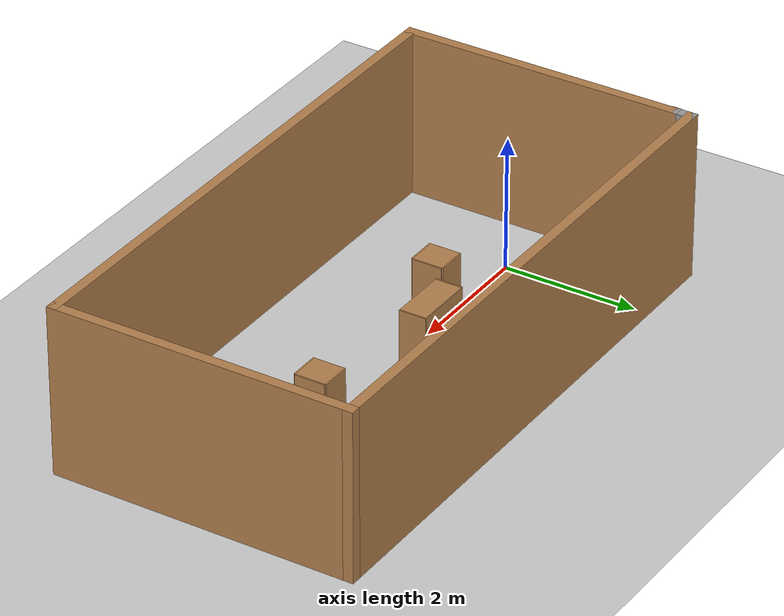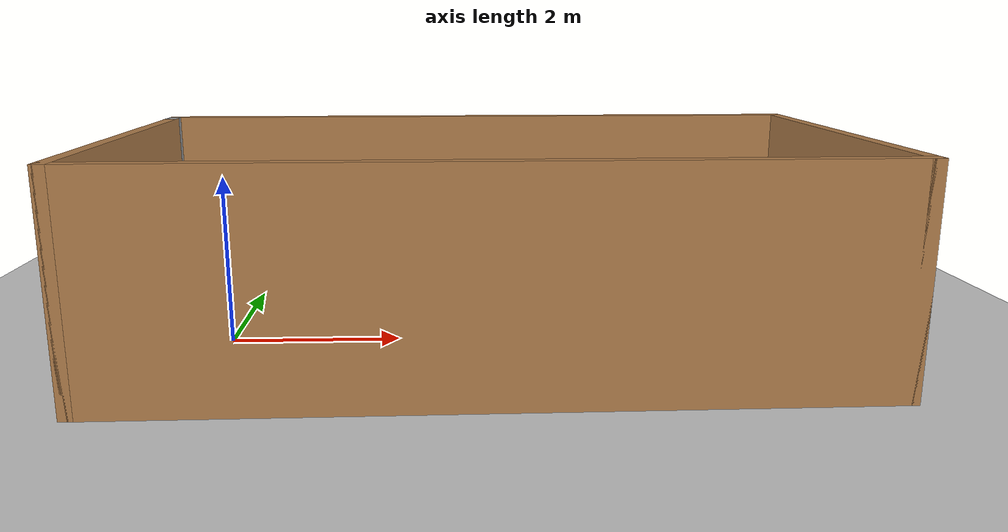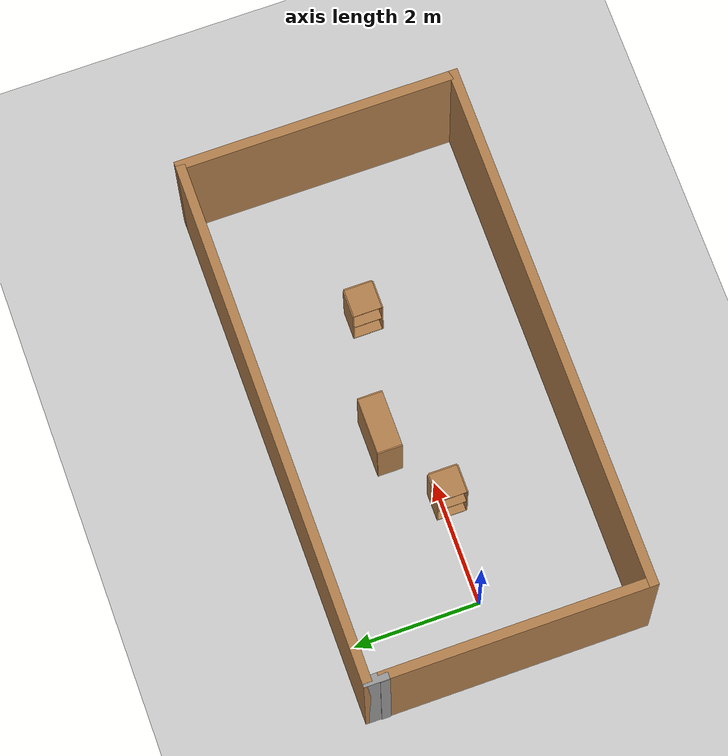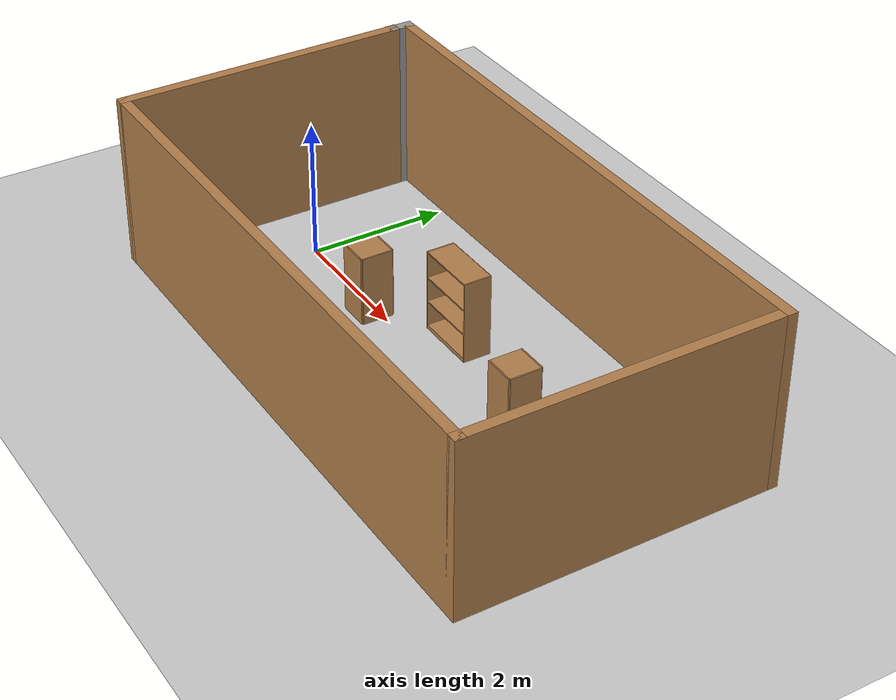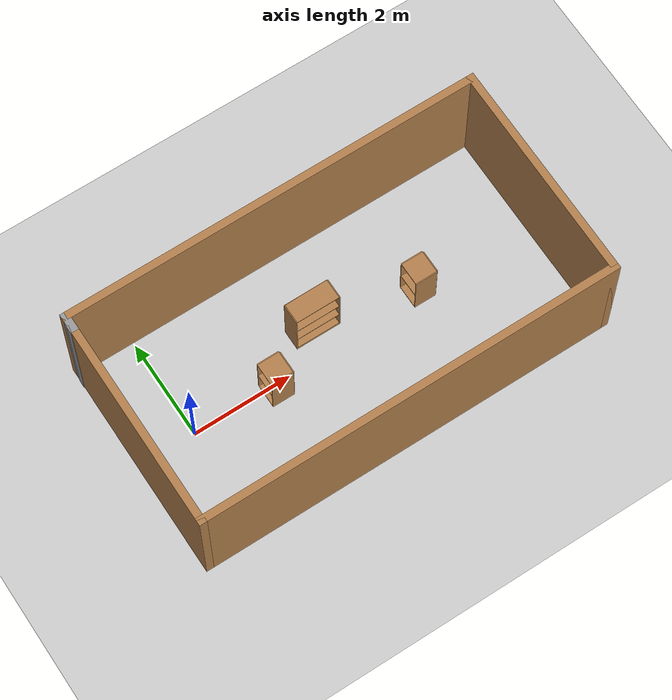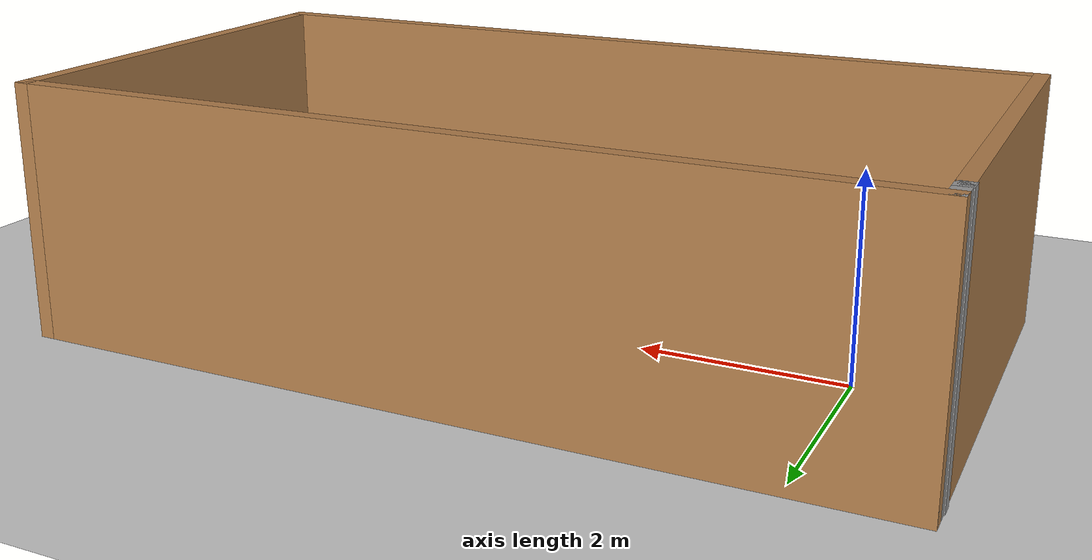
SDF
<sdf version="1.6">
 <world name="default">
  <light name="sun" type="directional">
   <pose>0 0 10 0 -0 0</pose>
   <diffuse>0.8 0.8 0.8 1</diffuse>
   <specular>0.2 0.2 0.2 1</specular>
   <attenuation>
    <range>1000</range>
    <constant>0.9</constant>
    <linear>0.01</linear>
    <quadratic>0.001</quadratic>
   </attenuation>
   <direction>-0.5 0.1 -0.9</direction>
  </light>
  <model name="ground_plane">
   <static>1</static>
   <link name="link">
    <collision name="collision">
     <geometry><plane><normal>0 0 1</normal><size>100 100</size></plane></geometry>
     <surface><friction><ode><mu>100</mu><mu2>50</mu2></ode></friction></surface>
    </collision>
    <visual name="visual">
     <cast_shadows>0</cast_shadows>
     <geometry><plane><normal>0 0 1</normal><size>100 100</size></plane></geometry>
     <material>
      <script><uri>file://media/materials/scripts/gazebo.material</uri><name>Gazebo/Grey</name></script>
     </material>
    </visual>
   </link>
  </model>
  <gravity>0 0 -9.8</gravity>
  <magnetic_field>6e-06 2.3e-05 -4.2e-05</magnetic_field>
  <atmosphere type="adiabatic"/>
  <physics name="default_physics" default="0" type="ode">
   <max_step_size>0.001</max_step_size>
   <real_time_factor>1</real_time_factor>
   <real_time_update_rate>1000</real_time_update_rate>
  </physics>
  <scene><ambient>0.4 0.4 0.4 1</ambient><background>0.7 0.7 0.7 1</background><shadows>1</shadows></scene>
  <audio><device>default</device></audio>
  <spherical_coordinates>
   <surface_model>EARTH_WGS84</surface_model>
   <latitude_deg>0</latitude_deg>
   <longitude_deg>0</longitude_deg>
   <elevation>0</elevation>
   <heading_deg>0</heading_deg>
  </spherical_coordinates>
  <model name="bigroom">
   <pose>3.07616 -0.0236 0 0 -0 0</pose>
   <link name="Wall_0">
    <collision name="Wall_0_Collision">
     <geometry><box><size>0.16 0.15 2.5</size></box></geometry>
     <pose>0 0 1.25 0 -0 0</pose>
    </collision>
    <visual name="Wall_0_Visual">
     <pose>0 0 1.25 0 -0 0</pose>
     <geometry><box><size>0.16 0.15 2.5</size></box></geometry>
     <material>
      <script><uri>file://media/materials/scripts/gazebo.material</uri><name>Gazebo/Grey</name></script>
      <ambient>1 1 1 1</ambient>
     </material>
     <meta><layer>0</layer></meta>
    </visual>
    <pose>-4.175 1.925 0 0 -0 0</pose>
   </link>
   <link name="Wall_1">
    <collision name="Wall_1_Collision">
     <geometry><box><size>4.25 0.15 2.5</size></box></geometry>
     <pose>0 0 1.25 0 -0 0</pose>
    </collision>
    <visual name="Wall_1_Visual">
     <pose>0 0 1.25 0 -0 0</pose>
     <geometry><box><size>4.25 0.15 2.5</size></box></geometry>
     <material>
      <script><uri>file://media/materials/scripts/gazebo.material</uri><name>Gazebo/Wood</name></script>
      <ambient>1 1 1 1</ambient>
     </material>
     <meta><layer>0</layer></meta>
    </visual>
    <pose>-4.17 -0.125 0 0 -0 -1.5708</pose>
   </link>
   <link name="Wall_2">
    <collision name="Wall_2_Collision">
     <geometry><box><size>8.5 0.15 2.5</size></box></geometry>
     <pose>0 0 1.25 0 -0 0</pose>
    </collision>
    <visual name="Wall_2_Visual">
     <pose>0 0 1.25 0 -0 0</pose>
     <geometry><box><size>8.5 0.15 2.5</size></box></geometry>
     <material>
      <script><uri>file://media/materials/scripts/gazebo.material</uri><name>Gazebo/Wood</name></script>
      <ambient>1 1 1 1</ambient>
     </material>
     <meta><layer>0</layer></meta>
    </visual>
    <pose>0.005 -2.175 0 0 -0 0</pose>
   </link>
   <link name="Wall_3">
    <collision name="Wall_3_Collision">
     <geometry><box><size>4.5 0.15 2.5</size></box></geometry>
     <pose>0 0 1.25 0 -0 0</pose>
    </collision>
    <visual name="Wall_3_Visual">
     <pose>0 0 1.25 0 -0 0</pose>
     <geometry><box><size>4.5 0.15 2.5</size></box></geometry>
     <material>
      <script><uri>file://media/materials/scripts/gazebo.material</uri><name>Gazebo/Wood</name></script>
      <ambient>1 1 1 1</ambient>
     </material>
     <meta><layer>0</layer></meta>
    </visual>
    <pose>4.18 0 0 0 -0 1.5708</pose>
   </link>
   <link name="Wall_4">
    <collision name="Wall_4_Collision">
     <geometry><box><size>8.5 0.15 2.5</size></box></geometry>
     <pose>0 0 1.25 0 -0 0</pose>
    </collision>
    <visual name="Wall_4_Visual">
     <pose>0 0 1.25 0 -0 0</pose>
     <geometry><box><size>8.5 0.15 2.5</size></box></geometry>
     <material>
      <script><uri>file://media/materials/scripts/gazebo.material</uri><name>Gazebo/Wood</name></script>
      <ambient>1 1 1 1</ambient>
     </material>
     <meta><layer>0</layer></meta>
    </visual>
    <pose>0.005 2.175 0 0 -0 3.14159</pose>
   </link>
   <link name="Wall_5">
    <collision name="Wall_5_Collision">
     <geometry><box><size>0.4 0.15 2.5</size></box></geometry>
     <pose>0 0 1.25 0 -0 0</pose>
    </collision>
    <visual name="Wall_5_Visual">
     <pose>0 0 1.25 0 -0 0</pose>
     <geometry><box><size>0.4 0.15 2.5</size></box></geometry>
     <material>
      <script><uri>file://media/materials/scripts/gazebo.material</uri><name>Gazebo/Grey</name></script>
      <ambient>1 1 1 1</ambient>
     </material>
     <meta><layer>0</layer></meta>
    </visual>
    <pose>-4.17 2.05 0 0 -0 -1.5708</pose>
   </link>
   <static>1</static>
  </model>
  <model name="bookshelf">
   <static>1</static>
   <link name="link">
    <inertial><mass>1</mass></inertial>
    <collision name="back">
     <pose>0 0.005 0.6 0 -0 0</pose>
     <geometry><box><size>0.9 0.01 1.2</size></box></geometry>
    </collision>
    <visual name="visual1">
     <pose>0 0.005 0.6 0 -0 0</pose>
     <geometry><box><size>0.9 0.01 1.2</size></box></geometry>
     <material>
      <script><uri>file://media/materials/scripts/gazebo.material</uri><name>Gazebo/Wood</name></script>
     </material>
    </visual>
    <collision name="left_side">
     <pose>0.45 -0.195 0.6 0 -0 0</pose>
     <geometry><box><size>0.02 0.4 1.2</size></box></geometry>
    </collision>
    <visual name="visual2">
     <pose>0.45 -0.195 0.6 0 -0 0</pose>
     <geometry><box><size>0.02 0.4 1.2</size></box></geometry>
     <material>
      <script><uri>file://media/materials/scripts/gazebo.material</uri><name>Gazebo/Wood</name></script>
     </material>
    </visual>
    <collision name="right_side">
     <pose>-0.45 -0.195 0.6 0 -0 0</pose>
     <geometry><box><size>0.02 0.4 1.2</size></box></geometry>
    </collision>
    <visual name="visual3">
     <pose>-0.45 -0.195 0.6 0 -0 0</pose>
     <geometry><box><size>0.02 0.4 1.2</size></box></geometry>
     <material>
      <script><uri>file://media/materials/scripts/gazebo.material</uri><name>Gazebo/Wood</name></script>
     </material>
    </visual>
    <collision name="bottom">
     <pose>0 -0.195 0.03 0 -0 0</pose>
     <geometry><box><size>0.88 0.4 0.06</size></box></geometry>
    </collision>
    <visual name="visual4">
     <pose>0 -0.195 0.03 0 -0 0</pose>
     <geometry><box><size>0.88 0.4 0.06</size></box></geometry>
     <material>
      <script><uri>file://media/materials/scripts/gazebo.material</uri><name>Gazebo/Wood</name></script>
     </material>
    </visual>
    <collision name="top">
     <pose>0 -0.195 1.19 0 -0 0</pose>
     <geometry><box><size>0.88 0.4 0.02</size></box></geometry>
    </collision>
    <visual name="visual5">
     <pose>0 -0.195 1.19 0 -0 0</pose>
     <geometry><box><size>0.88 0.4 0.02</size></box></geometry>
     <material>
      <script><uri>file://media/materials/scripts/gazebo.material</uri><name>Gazebo/Wood</name></script>
     </material>
    </visual>
    <collision name="low_shelf">
     <pose>0 -0.195 0.43 0 -0 0</pose>
     <geometry><box><size>0.88 0.4 0.02</size></box></geometry>
    </collision>
    <visual name="visual6">
     <pose>0 -0.195 0.43 0 -0 0</pose>
     <geometry><box><size>0.88 0.4 0.02</size></box></geometry>
     <material>
      <script><uri>file://media/materials/scripts/gazebo.material</uri><name>Gazebo/Wood</name></script>
     </material>
    </visual>
    <collision name="high_shelf">
     <pose>0 -0.195 0.8 0 -0 0</pose>
     <geometry><box><size>0.88 0.4 0.02</size></box></geometry>
    </collision>
    <visual name="visual7">
     <pose>0 -0.195 0.8 0 -0 0</pose>
     <geometry><box><size>0.88 0.4 0.02</size></box></geometry>
     <material>
      <script><uri>file://media/materials/scripts/gazebo.material</uri><name>Gazebo/Wood</name></script>
     </material>
    </visual>
   </link>
   <pose>2.85455 0.76129 0 0 -0 0</pose>
  </model>
  <model name="cabinet">
   <static>1</static>
   <link name="cabinet_bottom_plate">
    <inertial>
     <pose>0 0 -1 0 -0 0</pose>
     <inertia><ixx>2.05</ixx><ixy>0</ixy><ixz>0</ixz><iyy>2.05</iyy><iyz>0</iyz><izz>2.05</izz></inertia>
     <mass>25</mass>
    </inertial>
    <collision name="cabinet_bottom_plate_geom">
     <pose>0 0 0.01 0 -0 0</pose>
     <geometry><box><size>0.45 0.45 0.02</size></box></geometry>
    </collision>
    <visual name="cabinet_bottom_plate_geom_visual">
     <pose>0 0 0.01 0 -0 0</pose>
     <geometry><box><size>0.45 0.45 0.02</size></box></geometry>
     <material>
      <script><uri>file://media/materials/scripts/gazebo.material</uri><name>Gazebo/Wood</name></script>
     </material>
    </visual>
    <collision name="cabinet_bottom_plate_geom_cabinet_back_plate">
     <pose>0.235 0 0.51 0 -0 0</pose>
     <geometry><box><size>0.02 0.45 1.02</size></box></geometry>
    </collision>
    <visual name="cabinet_bottom_plate_geom_cabinet_back_plate_visual">
     <pose>0.235 0 0.51 0 -0 0</pose>
     <geometry><box><size>0.02 0.45 1.02</size></box></geometry>
     <material>
      <script><uri>file://media/materials/scripts/gazebo.material</uri><name>Gazebo/Wood</name></script>
     </material>
    </visual>
    <collision name="cabinet_bottom_plate_geom_cabinet_left_plate">
     <pose>0 0.235 0.51 0 -0 0</pose>
     <geometry><box><size>0.45 0.02 1.02</size></box></geometry>
    </collision>
    <visual name="cabinet_bottom_plate_geom_cabinet_left_plate_visual">
     <pose>0 0.235 0.51 0 -0 0</pose>
     <geometry><box><size>0.45 0.02 1.02</size></box></geometry>
     <material>
      <script><uri>file://media/materials/scripts/gazebo.material</uri><name>Gazebo/Wood</name></script>
     </material>
    </visual>
    <collision name="cabinet_bottom_plate_geom_cabinet_middle_plate">
     <pose>0 0 0.51 0 -0 0</pose>
     <geometry><box><size>0.45 0.45 0.02</size></box></geometry>
    </collision>
    <visual name="cabinet_bottom_plate_geom_cabinet_middle_plate_visual">
     <pose>0 0 0.51 0 -0 0</pose>
     <geometry><box><size>0.45 0.45 0.02</size></box></geometry>
     <material>
      <script><uri>file://media/materials/scripts/gazebo.material</uri><name>Gazebo/Wood</name></script>
     </material>
    </visual>
    <collision name="cabinet_bottom_plate_geom_cabinet_right_plate">
     <pose>0 -0.235 0.51 0 -0 0</pose>
     <geometry><box><size>0.45 0.02 1.02</size></box></geometry>
    </collision>
    <visual name="cabinet_bottom_plate_geom_cabinet_right_plate_visual">
     <pose>0 -0.235 0.51 0 -0 0</pose>
     <geometry><box><size>0.45 0.02 1.02</size></box></geometry>
     <material>
      <script><uri>file://media/materials/scripts/gazebo.material</uri><name>Gazebo/Wood</name></script>
     </material>
    </visual>
    <collision name="cabinet_bottom_plate_geom_cabinet_top_plate">
     <pose>0 0 1.01 0 -0 0</pose>
     <geometry><box><size>0.45 0.45 0.02</size></box></geometry>
    </collision>
    <visual name="cabinet_bottom_plate_geom_cabinet_top_plate_visual">
     <pose>0 0 1.01 0 -0 0</pose>
     <geometry><box><size>0.45 0.45 0.02</size></box></geometry>
     <material>
      <script><uri>file://media/materials/scripts/gazebo.material</uri><name>Gazebo/Wood</name></script>
     </material>
    </visual>
   </link>
   <pose>4.83446 0.136164 0 0 -0 0</pose>
  </model>
  <model name="cabinet_0">
   <static>1</static>
   <link name="cabinet_bottom_plate">
    <inertial>
     <pose>0 0 -1 0 -0 0</pose>
     <inertia><ixx>2.05</ixx><ixy>0</ixy><ixz>0</ixz><iyy>2.05</iyy><iyz>0</iyz><izz>2.05</izz></inertia>
     <mass>25</mass>
    </inertial>
    <collision name="cabinet_bottom_plate_geom">
     <pose>0 0 0.01 0 -0 0</pose>
     <geometry><box><size>0.45 0.45 0.02</size></box></geometry>
    </collision>
    <visual name="cabinet_bottom_plate_geom_visual">
     <pose>0 0 0.01 0 -0 0</pose>
     <geometry><box><size>0.45 0.45 0.02</size></box></geometry>
     <material>
      <script><uri>file://media/materials/scripts/gazebo.material</uri><name>Gazebo/Wood</name></script>
     </material>
    </visual>
    <collision name="cabinet_bottom_plate_geom_cabinet_back_plate">
     <pose>0.235 0 0.51 0 -0 0</pose>
     <geometry><box><size>0.02 0.45 1.02</size></box></geometry>
    </collision>
    <visual name="cabinet_bottom_plate_geom_cabinet_back_plate_visual">
     <pose>0.235 0 0.51 0 -0 0</pose>
     <geometry><box><size>0.02 0.45 1.02</size></box></geometry>
     <material>
      <script><uri>file://media/materials/scripts/gazebo.material</uri><name>Gazebo/Wood</name></script>
     </material>
    </visual>
    <collision name="cabinet_bottom_plate_geom_cabinet_left_plate">
     <pose>0 0.235 0.51 0 -0 0</pose>
     <geometry><box><size>0.45 0.02 1.02</size></box></geometry>
    </collision>
    <visual name="cabinet_bottom_plate_geom_cabinet_left_plate_visual">
     <pose>0 0.235 0.51 0 -0 0</pose>
     <geometry><box><size>0.45 0.02 1.02</size></box></geometry>
     <material>
      <script><uri>file://media/materials/scripts/gazebo.material</uri><name>Gazebo/Wood</name></script>
     </material>
    </visual>
    <collision name="cabinet_bottom_plate_geom_cabinet_middle_plate">
     <pose>0 0 0.51 0 -0 0</pose>
     <geometry><box><size>0.45 0.45 0.02</size></box></geometry>
    </collision>
    <visual name="cabinet_bottom_plate_geom_cabinet_middle_plate_visual">
     <pose>0 0 0.51 0 -0 0</pose>
     <geometry><box><size>0.45 0.45 0.02</size></box></geometry>
     <material>
      <script><uri>file://media/materials/scripts/gazebo.material</uri><name>Gazebo/Wood</name></script>
     </material>
    </visual>
    <collision name="cabinet_bottom_plate_geom_cabinet_right_plate">
     <pose>0 -0.235 0.51 0 -0 0</pose>
     <geometry><box><size>0.45 0.02 1.02</size></box></geometry>
    </collision>
    <visual name="cabinet_bottom_plate_geom_cabinet_right_plate_visual">
     <pose>0 -0.235 0.51 0 -0 0</pose>
     <geometry><box><size>0.45 0.02 1.02</size></box></geometry>
     <material>
      <script><uri>file://media/materials/scripts/gazebo.material</uri><name>Gazebo/Wood</name></script>
     </material>
    </visual>
    <collision name="cabinet_bottom_plate_geom_cabinet_top_plate">
     <pose>0 0 1.01 0 -0 0</pose>
     <geometry><box><size>0.45 0.45 0.02</size></box></geometry>
    </collision>
    <visual name="cabinet_bottom_plate_geom_cabinet_top_plate_visual">
     <pose>0 0 1.01 0 -0 0</pose>
     <geometry><box><size>0.45 0.45 0.02</size></box></geometry>
     <material>
      <script><uri>file://media/materials/scripts/gazebo.material</uri><name>Gazebo/Wood</name></script>
     </material>
    </visual>
   </link>
   <pose>1.66205 -0.086114 0 0 -0 0</pose>
  </model>
 </world>
</sdf>
